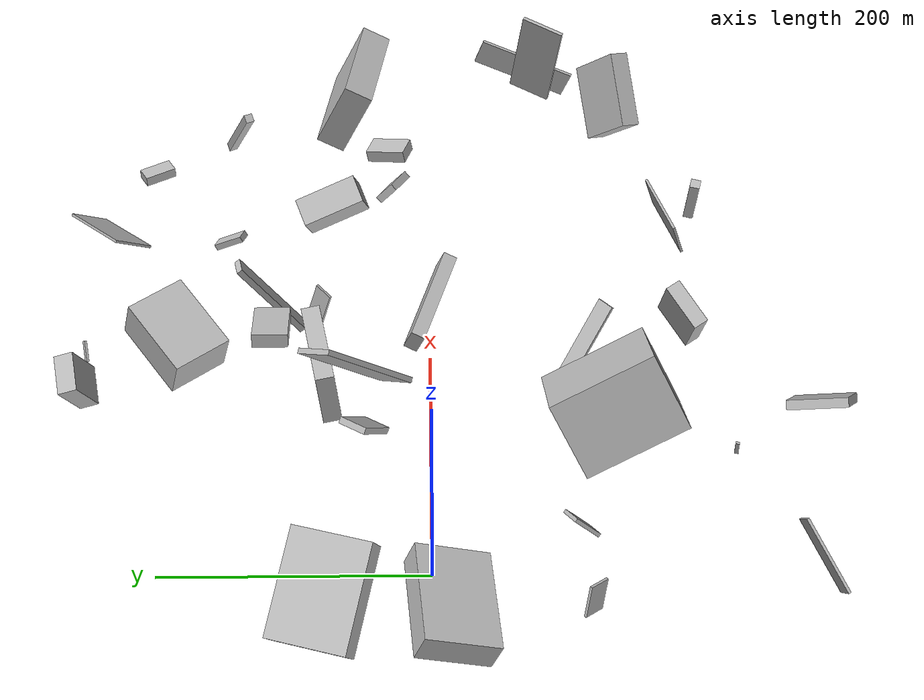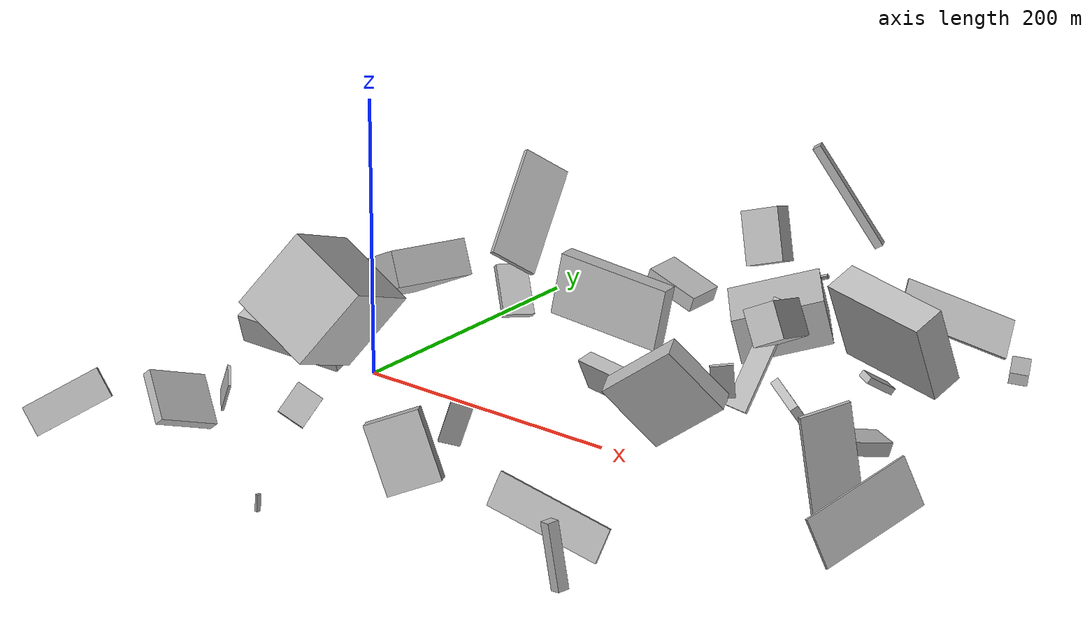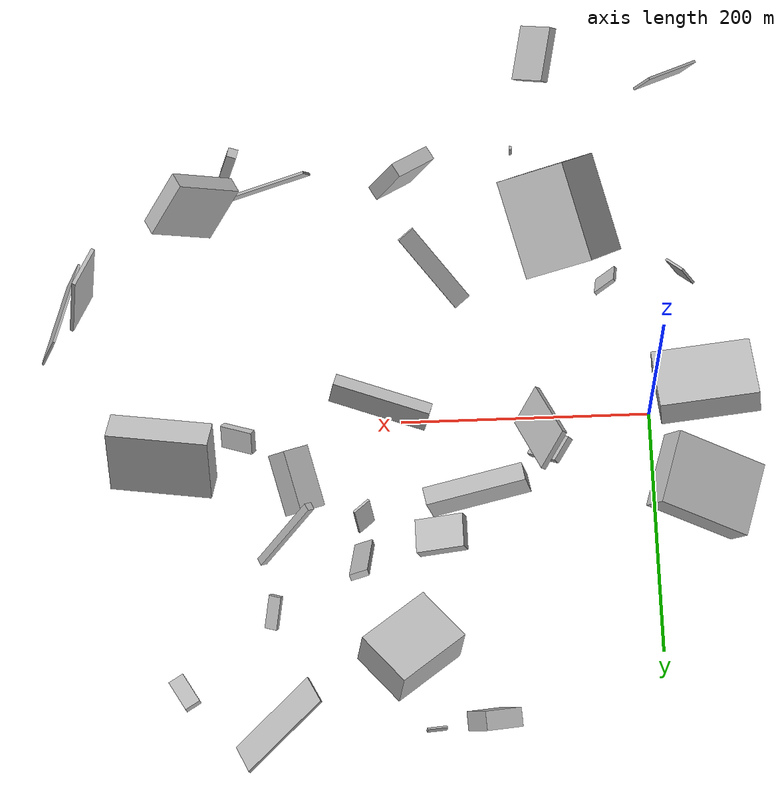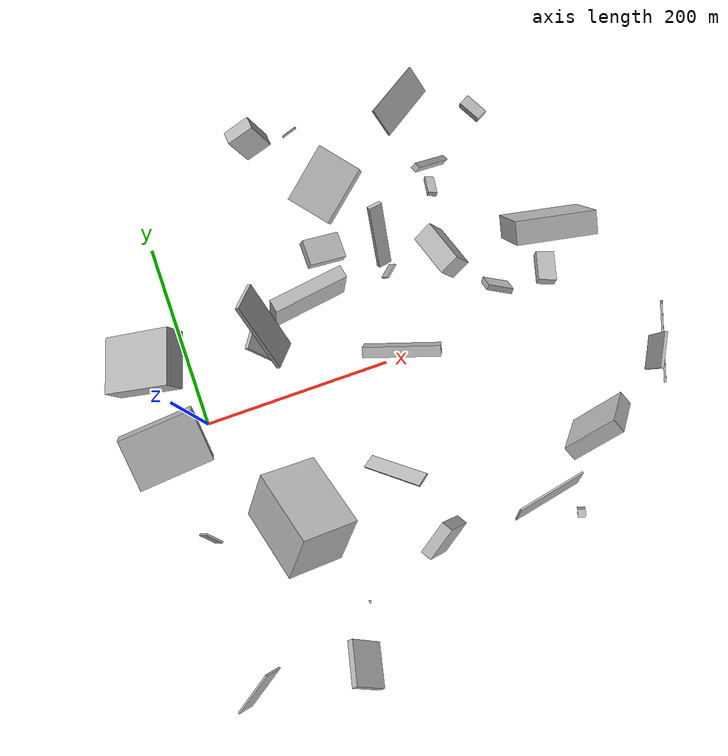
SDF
<sdf version="1.6">
 <world name="default">
  <scene>
   <sky><clouds><speed>12</speed></clouds></sky>
   <ambient>0.4 0.4 0.4 1</ambient>
   <background>0.7 0.7 0.7 1</background>
   <shadows>1</shadows>
  </scene>
  <gravity>0 0 -9.8066</gravity>
  <magnetic_field>6e-06 2.3e-05 -4.2e-05</magnetic_field>
  <physics default="0" name="default_physics" type="ode">
   <ode>
    <solver>
     <type>quick</type>
     <iters>10</iters>
     <sor>1.0</sor>
     <use_dynamic_moi_rescaling>0</use_dynamic_moi_rescaling>
    </solver>
    <constraints>
     <cfm>0</cfm>
     <erp>0.2</erp>
     <contact_max_correcting_vel>100</contact_max_correcting_vel>
     <contact_surface_layer>0.001</contact_surface_layer>
    </constraints>
   </ode>
   <max_step_size>0.004</max_step_size>
   <real_time_factor>1</real_time_factor>
   <real_time_update_rate>250</real_time_update_rate>
  </physics>
  <light name="sun" type="directional">
   <pose>0 0 10 0 0 0</pose>
   <diffuse>0.8 0.8 0.8 1</diffuse>
   <specular>0.2 0.2 0.2 1</specular>
   <attenuation>
    <range>1000</range>
    <constant>0.9</constant>
    <linear>0.01</linear>
    <quadratic>0.001</quadratic>
   </attenuation>
   <direction>-0.5 0.1 -0.9</direction>
  </light>
  <model name="building_1">
   <static>0</static>
   <pose>378.6300890481322 227.4558059542892 31.949936025704034 -3.0175721038129115 -0.05510756100647024 2.08787185058181</pose>
   <link name="link">
    <gravity>0</gravity>
    <pose>0 0 4.0 0 0 0</pose>
    <collision name="collision"><geometry><box><size>26 13 8</size></box></geometry></collision>
    <visual name="visual">
     <cast_shadows>0</cast_shadows>
     <geometry><box><size>26 13 8</size></box></geometry>
     <material>
      <script>
       <uri>model://HANNAS_wall/materials/scripts</uri>
       <uri>model://HANNAS_wall/materials/textures</uri>
       <name>vrc/HANNAS_wall</name>
      </script>
     </material>
    </visual>
   </link>
  </model>
  <model name="building_2">
   <static>0</static>
   <pose>142.54357922878933 88.36336765702166 65.46653922329924 1.1420210324128879 -1.3968869808307764 0.6118035411615986</pose>
   <link name="link">
    <gravity>0</gravity>
    <pose>0 0 7.0 0 0 0</pose>
    <collision name="collision"><geometry><box><size>44 80 14</size></box></geometry></collision>
    <visual name="visual">
     <cast_shadows>0</cast_shadows>
     <geometry><box><size>44 80 14</size></box></geometry>
     <material>
      <script>
       <uri>model://HANNAS_wall/materials/scripts</uri>
       <uri>model://HANNAS_wall/materials/textures</uri>
       <name>vrc/HANNAS_wall</name>
      </script>
     </material>
    </visual>
   </link>
  </model>
  <model name="building_3">
   <static>0</static>
   <pose>83.53625021997931 49.40393011386145 66.2792779809717 -0.13436011928778702 0.8110114692577636 -0.6721788285161574</pose>
   <link name="link">
    <gravity>0</gravity>
    <pose>0 0 2.5 0 0 0</pose>
    <collision name="collision"><geometry><box><size>37 22 5</size></box></geometry></collision>
    <visual name="visual">
     <cast_shadows>0</cast_shadows>
     <geometry><box><size>37 22 5</size></box></geometry>
     <material>
      <script>
       <uri>model://HANNAS_wall/materials/scripts</uri>
       <uri>model://HANNAS_wall/materials/textures</uri>
       <name>vrc/HANNAS_wall</name>
      </script>
     </material>
    </visual>
   </link>
  </model>
  <model name="building_4">
   <static>0</static>
   <pose>101.53551448108038 -230.18554979058302 7.978463317631109 0.02686569366949801 0.029123544963094147 1.3572509451682453</pose>
   <link name="link">
    <gravity>0</gravity>
    <pose>0 0 6.0 0 0 0</pose>
    <collision name="collision"><geometry><box><size>3 2 12</size></box></geometry></collision>
    <visual name="visual">
     <cast_shadows>0</cast_shadows>
     <geometry><box><size>3 2 12</size></box></geometry>
     <material>
      <script>
       <uri>model://HANNAS_wall/materials/scripts</uri>
       <uri>model://HANNAS_wall/materials/textures</uri>
       <name>vrc/HANNAS_wall</name>
      </script>
     </material>
    </visual>
   </link>
  </model>
  <model name="building_5">
   <static>0</static>
   <pose>385.81452388227916 32.32916697184466 39.932885428053076 0.12924165746838695 0.24859693241000383 1.2695977926667936</pose>
   <link name="link">
    <gravity>0</gravity>
    <pose>0 0 5.0 0 0 0</pose>
    <collision name="collision"><geometry><box><size>33 19 10</size></box></geometry></collision>
    <visual name="visual">
     <cast_shadows>0</cast_shadows>
     <geometry><box><size>33 19 10</size></box></geometry>
     <material>
      <script>
       <uri>model://HANNAS_wall/materials/scripts</uri>
       <uri>model://HANNAS_wall/materials/textures</uri>
       <name>vrc/HANNAS_wall</name>
      </script>
     </material>
    </visual>
   </link>
  </model>
  <model name="building_6">
   <static>0</static>
   <pose>276.46451157371064 235.39809383623765 52.31293419272109 -2.1742178642581824 -0.8220436280421917 -0.4314006921512007</pose>
   <link name="link">
    <gravity>0</gravity>
    <pose>0 0 40.0 0 0 0</pose>
    <collision name="collision"><geometry><box><size>2 32 80</size></box></geometry></collision>
    <visual name="visual">
     <cast_shadows>0</cast_shadows>
     <geometry><box><size>2 32 80</size></box></geometry>
     <material>
      <script>
       <uri>model://HANNAS_wall/materials/scripts</uri>
       <uri>model://HANNAS_wall/materials/textures</uri>
       <name>vrc/HANNAS_wall</name>
      </script>
     </material>
    </visual>
   </link>
  </model>
  <model name="building_7">
   <static>0</static>
   <pose>329.702483294325 -214.09583474691283 39.596435971866235 -0.3078564869934474 -1.387156337559628 -3.091199524099702</pose>
   <link name="link">
    <gravity>0</gravity>
    <pose>0 0 4.0 0 0 0</pose>
    <collision name="collision"><geometry><box><size>45 8 8</size></box></geometry></collision>
    <visual name="visual">
     <cast_shadows>0</cast_shadows>
     <geometry><box><size>45 8 8</size></box></geometry>
     <material>
      <script>
       <uri>model://HANNAS_wall/materials/scripts</uri>
       <uri>model://HANNAS_wall/materials/textures</uri>
       <name>vrc/HANNAS_wall</name>
      </script>
     </material>
    </visual>
   </link>
  </model>
  <model name="building_8">
   <static>0</static>
   <pose>386.82639569599075 50.558673441396465 108.48765748553967 -0.21500947870882992 -1.1501471449071055 -1.5385581651781668</pose>
   <link name="link">
    <gravity>0</gravity>
    <pose>0 0 11.5 0 0 0</pose>
    <collision name="collision"><geometry><box><size>60 80 23</size></box></geometry></collision>
    <visual name="visual">
     <cast_shadows>0</cast_shadows>
     <geometry><box><size>60 80 23</size></box></geometry>
     <material>
      <script>
       <uri>model://HANNAS_wall/materials/scripts</uri>
       <uri>model://HANNAS_wall/materials/textures</uri>
       <name>vrc/HANNAS_wall</name>
      </script>
     </material>
    </visual>
   </link>
  </model>
  <model name="building_9">
   <static>0</static>
   <pose>254.73818949515743 -12.959639380680677 53.47846929917721 -1.8179165420365035 1.2203455072811238 1.011248714218957</pose>
   <link name="link">
    <gravity>0</gravity>
    <pose>0 0 40.0 0 0 0</pose>
    <collision name="collision"><geometry><box><size>22 11 80</size></box></geometry></collision>
    <visual name="visual">
     <cast_shadows>0</cast_shadows>
     <geometry><box><size>22 11 80</size></box></geometry>
     <material>
      <script>
       <uri>model://HANNAS_wall/materials/scripts</uri>
       <uri>model://HANNAS_wall/materials/textures</uri>
       <name>vrc/HANNAS_wall</name>
      </script>
     </material>
    </visual>
   </link>
  </model>
  <model name="building_10">
   <static>0</static>
   <pose>144.82635682116552 259.7315178178161 36.94701068665416 -0.32245240597900726 -0.3122622918058334 0.17769858947750686</pose>
   <link name="link">
    <gravity>0</gravity>
    <pose>0 0 19.5 0 0 0</pose>
    <collision name="collision"><geometry><box><size>30 15 39</size></box></geometry></collision>
    <visual name="visual">
     <cast_shadows>0</cast_shadows>
     <geometry><box><size>30 15 39</size></box></geometry>
     <material>
      <script>
       <uri>model://HANNAS_wall/materials/scripts</uri>
       <uri>model://HANNAS_wall/materials/textures</uri>
       <name>vrc/HANNAS_wall</name>
      </script>
     </material>
    </visual>
   </link>
  </model>
  <model name="building_11">
   <static>0</static>
   <pose>86.8189057081853 -257.9130458008998 89.68457272135575 -1.1086277320111741 -0.7345601875267742 2.604937332853221</pose>
   <link name="link">
    <gravity>0</gravity>
    <pose>0 0 22.0 0 0 0</pose>
    <collision name="collision"><geometry><box><size>35 7 44</size></box></geometry></collision>
    <visual name="visual">
     <cast_shadows>0</cast_shadows>
     <geometry><box><size>35 7 44</size></box></geometry>
     <material>
      <script>
       <uri>model://HANNAS_wall/materials/scripts</uri>
       <uri>model://HANNAS_wall/materials/textures</uri>
       <name>vrc/HANNAS_wall</name>
      </script>
     </material>
    </visual>
   </link>
  </model>
  <model name="building_12">
   <static>0</static>
   <pose>468.6399189225397 -80.3498162878991 60.44788313393431 1.2935980709880803 -0.2786426592715788 1.3208631570566522</pose>
   <link name="link">
    <gravity>0</gravity>
    <pose>0 0 1.0 0 0 0</pose>
    <collision name="collision"><geometry><box><size>80 35 2</size></box></geometry></collision>
    <visual name="visual">
     <cast_shadows>0</cast_shadows>
     <geometry><box><size>80 35 2</size></box></geometry>
     <material>
      <script>
       <uri>model://HANNAS_wall/materials/scripts</uri>
       <uri>model://HANNAS_wall/materials/textures</uri>
       <name>vrc/HANNAS_wall</name>
      </script>
     </material>
    </visual>
   </link>
  </model>
  <model name="building_13">
   <static>0</static>
   <pose>155.13027048367218 119.6570271208386 78.99609737779255 1.8991001679875241 -0.005731201520974745 1.5782811061872324</pose>
   <link name="link">
    <gravity>0</gravity>
    <pose>0 0 19.5 0 0 0</pose>
    <collision name="collision"><geometry><box><size>27 11 39</size></box></geometry></collision>
    <visual name="visual">
     <cast_shadows>0</cast_shadows>
     <geometry><box><size>27 11 39</size></box></geometry>
     <material>
      <script>
       <uri>model://HANNAS_wall/materials/scripts</uri>
       <uri>model://HANNAS_wall/materials/textures</uri>
       <name>vrc/HANNAS_wall</name>
      </script>
     </material>
    </visual>
   </link>
  </model>
  <model name="building_14">
   <static>0</static>
   <pose>304.91521803849656 151.28482458506386 29.518021315049054 -2.1649663959014385 0.2177763498980822 -0.34125439978924466</pose>
   <link name="link">
    <gravity>0</gravity>
    <pose>0 0 13.5 0 0 0</pose>
    <collision name="collision"><geometry><box><size>10 5 27</size></box></geometry></collision>
    <visual name="visual">
     <cast_shadows>0</cast_shadows>
     <geometry><box><size>10 5 27</size></box></geometry>
     <material>
      <script>
       <uri>model://HANNAS_wall/materials/scripts</uri>
       <uri>model://HANNAS_wall/materials/textures</uri>
       <name>vrc/HANNAS_wall</name>
      </script>
     </material>
    </visual>
   </link>
  </model>
  <model name="building_15">
   <static>0</static>
   <pose>174.78822907291257 264.065881537964 30.333207728216895 0.8977651748042286 0.9471773499864955 1.178264408399796</pose>
   <link name="link">
    <gravity>0</gravity>
    <pose>0 0 8.5 0 0 0</pose>
    <collision name="collision"><geometry><box><size>3 2 17</size></box></geometry></collision>
    <visual name="visual">
     <cast_shadows>0</cast_shadows>
     <geometry><box><size>3 2 17</size></box></geometry>
     <material>
      <script>
       <uri>model://HANNAS_wall/materials/scripts</uri>
       <uri>model://HANNAS_wall/materials/textures</uri>
       <name>vrc/HANNAS_wall</name>
      </script>
     </material>
    </visual>
   </link>
  </model>
  <model name="building_16">
   <static>0</static>
   <pose>449.1914858057049 -89.30929143248308 88.03875860980656 1.5318542168523983 -0.13664091157473346 1.1138127458124925</pose>
   <link name="link">
    <gravity>0</gravity>
    <pose>0 0 1.5 0 0 0</pose>
    <collision name="collision"><geometry><box><size>35 80 3</size></box></geometry></collision>
    <visual name="visual">
     <cast_shadows>0</cast_shadows>
     <geometry><box><size>35 80 3</size></box></geometry>
     <material>
      <script>
       <uri>model://HANNAS_wall/materials/scripts</uri>
       <uri>model://HANNAS_wall/materials/textures</uri>
       <name>vrc/HANNAS_wall</name>
      </script>
     </material>
    </visual>
   </link>
  </model>
  <model name="building_17">
   <static>0</static>
   <pose>-42.51029854162658 -40.87229555000319 24.209201875372692 0.15953811909145743 1.2157177630900329 1.80747416238422</pose>
   <link name="link">
    <gravity>0</gravity>
    <pose>0 0 28.5 0 0 0</pose>
    <collision name="collision"><geometry><box><size>23 80 57</size></box></geometry></collision>
    <visual name="visual">
     <cast_shadows>0</cast_shadows>
     <geometry><box><size>23 80 57</size></box></geometry>
     <material>
      <script>
       <uri>model://HANNAS_wall/materials/scripts</uri>
       <uri>model://HANNAS_wall/materials/textures</uri>
       <name>vrc/HANNAS_wall</name>
      </script>
     </material>
    </visual>
   </link>
  </model>
  <model name="building_18">
   <static>0</static>
   <pose>215.8315804729537 178.81861801935648 29.201018061588755 1.2019216926436542 -1.3194848188258013 -2.0837081609278636</pose>
   <link name="link">
    <gravity>0</gravity>
    <pose>0 0 24.5 0 0 0</pose>
    <collision name="collision"><geometry><box><size>34 65 49</size></box></geometry></collision>
    <visual name="visual">
     <cast_shadows>0</cast_shadows>
     <geometry><box><size>34 65 49</size></box></geometry>
     <material>
      <script>
       <uri>model://HANNAS_wall/materials/scripts</uri>
       <uri>model://HANNAS_wall/materials/textures</uri>
       <name>vrc/HANNAS_wall</name>
      </script>
     </material>
    </visual>
   </link>
  </model>
  <model name="building_19">
   <static>0</static>
   <pose>178.8415641934759 -202.38077793697286 56.15026680519378 1.2188731634627954 0.19893318067926738 2.1105789311241625</pose>
   <link name="link">
    <gravity>0</gravity>
    <pose>0 0 18.5 0 0 0</pose>
    <collision name="collision"><geometry><box><size>12 48 37</size></box></geometry></collision>
    <visual name="visual">
     <cast_shadows>0</cast_shadows>
     <geometry><box><size>12 48 37</size></box></geometry>
     <material>
      <script>
       <uri>model://HANNAS_wall/materials/scripts</uri>
       <uri>model://HANNAS_wall/materials/textures</uri>
       <name>vrc/HANNAS_wall</name>
      </script>
     </material>
    </visual>
   </link>
  </model>
  <model name="building_20">
   <static>0</static>
   <pose>279.10172461635904 98.58774731448955 80.19583089253152 1.2261812928051241 -0.4092617740150057 0.40337956079284365</pose>
   <link name="link">
    <gravity>0</gravity>
    <pose>0 0 24.5 0 0 0</pose>
    <collision name="collision"><geometry><box><size>22 26 49</size></box></geometry></collision>
    <visual name="visual">
     <cast_shadows>0</cast_shadows>
     <geometry><box><size>22 26 49</size></box></geometry>
     <material>
      <script>
       <uri>model://HANNAS_wall/materials/scripts</uri>
       <uri>model://HANNAS_wall/materials/textures</uri>
       <name>vrc/HANNAS_wall</name>
      </script>
     </material>
    </visual>
   </link>
  </model>
  <model name="building_21">
   <static>0</static>
   <pose>229.04788173076594 124.39848359369545 36.72803222783951 1.833315157120666 0.5611123049823524 1.9241326841701503</pose>
   <link name="link">
    <gravity>0</gravity>
    <pose>0 0 7.5 0 0 0</pose>
    <collision name="collision"><geometry><box><size>5 80 15</size></box></geometry></collision>
    <visual name="visual">
     <cast_shadows>0</cast_shadows>
     <geometry><box><size>5 80 15</size></box></geometry>
     <material>
      <script>
       <uri>model://HANNAS_wall/materials/scripts</uri>
       <uri>model://HANNAS_wall/materials/textures</uri>
       <name>vrc/HANNAS_wall</name>
      </script>
     </material>
    </visual>
   </link>
  </model>
  <model name="building_22">
   <static>0</static>
   <pose>83.77642204766907 -115.19687738765393 136.34528066839775 2.5446226868120063 -0.3837247619498251 -1.2842138758709696</pose>
   <link name="link">
    <gravity>0</gravity>
    <pose>0 0 30.0 0 0 0</pose>
    <collision name="collision"><geometry><box><size>80 59 60</size></box></geometry></collision>
    <visual name="visual">
     <cast_shadows>0</cast_shadows>
     <geometry><box><size>80 59 60</size></box></geometry>
     <material>
      <script>
       <uri>model://HANNAS_wall/materials/scripts</uri>
       <uri>model://HANNAS_wall/materials/textures</uri>
       <name>vrc/HANNAS_wall</name>
      </script>
     </material>
    </visual>
   </link>
  </model>
  <model name="building_23">
   <static>0</static>
   <pose>-46.95913681818516 47.614660180260195 43.34200199447927 -1.6956577413341796 1.0885044705036162 -0.4076006538381304</pose>
   <link name="link">
    <gravity>0</gravity>
    <pose>0 0 30.0 0 0 0</pose>
    <collision name="collision"><geometry><box><size>26 80 60</size></box></geometry></collision>
    <visual name="visual">
     <cast_shadows>0</cast_shadows>
     <geometry><box><size>26 80 60</size></box></geometry>
     <material>
      <script>
       <uri>model://HANNAS_wall/materials/scripts</uri>
       <uri>model://HANNAS_wall/materials/textures</uri>
       <name>vrc/HANNAS_wall</name>
      </script>
     </material>
    </visual>
   </link>
  </model>
  <model name="building_24">
   <static>0</static>
   <pose>29.28860568119156 -108.091351126948 20.50913659219942 -0.7855183129588947 0.7318077711695415 -1.723633074717996</pose>
   <link name="link">
    <gravity>0</gravity>
    <pose>0 0 1.5 0 0 0</pose>
    <collision name="collision"><geometry><box><size>24 20 3</size></box></geometry></collision>
    <visual name="visual">
     <cast_shadows>0</cast_shadows>
     <geometry><box><size>24 20 3</size></box></geometry>
     <material>
      <script>
       <uri>model://HANNAS_wall/materials/scripts</uri>
       <uri>model://HANNAS_wall/materials/textures</uri>
       <name>vrc/HANNAS_wall</name>
      </script>
     </material>
    </visual>
   </link>
  </model>
  <model name="building_25">
   <static>0</static>
   <pose>-24.774171480342662 -271.7706886713612 63.39663441698344 1.9948707306293325 -0.9682970451728089 -3.048433675018288</pose>
   <link name="link">
    <gravity>0</gravity>
    <pose>0 0 1.0 0 0 0</pose>
    <collision name="collision"><geometry><box><size>21 58 2</size></box></geometry></collision>
    <visual name="visual">
     <cast_shadows>0</cast_shadows>
     <geometry><box><size>21 58 2</size></box></geometry>
     <material>
      <script>
       <uri>model://HANNAS_wall/materials/scripts</uri>
       <uri>model://HANNAS_wall/materials/textures</uri>
       <name>vrc/HANNAS_wall</name>
      </script>
     </material>
    </visual>
   </link>
  </model>
  <model name="building_26">
   <static>0</static>
   <pose>357.5813405006888 -134.48968826567432 133.00665342259938 2.006702231827166 0.8439863426916073 0.7551265227783432</pose>
   <link name="link">
    <gravity>0</gravity>
    <pose>0 0 7.5 0 0 0</pose>
    <collision name="collision"><geometry><box><size>51 57 15</size></box></geometry></collision>
    <visual name="visual">
     <cast_shadows>0</cast_shadows>
     <geometry><box><size>51 57 15</size></box></geometry>
     <material>
      <script>
       <uri>model://HANNAS_wall/materials/scripts</uri>
       <uri>model://HANNAS_wall/materials/textures</uri>
       <name>vrc/HANNAS_wall</name>
      </script>
     </material>
    </visual>
   </link>
  </model>
  <model name="building_27">
   <static>0</static>
   <pose>93.01200428295454 53.43921074447227 124.85596742027884 0.8447793353870793 -0.7325851554637861 1.8543355810245035</pose>
   <link name="link">
    <gravity>0</gravity>
    <pose>0 0 2.0 0 0 0</pose>
    <collision name="collision"><geometry><box><size>79 34 4</size></box></geometry></collision>
    <visual name="visual">
     <cast_shadows>0</cast_shadows>
     <geometry><box><size>79 34 4</size></box></geometry>
     <material>
      <script>
       <uri>model://HANNAS_wall/materials/scripts</uri>
       <uri>model://HANNAS_wall/materials/textures</uri>
       <name>vrc/HANNAS_wall</name>
      </script>
     </material>
    </visual>
   </link>
  </model>
  <model name="building_28">
   <static>0</static>
   <pose>232.764597658029 88.05654326898701 28.19723239105333 -1.86669835625714 0.08696734102066277 -2.4272550580579453</pose>
   <link name="link">
    <gravity>0</gravity>
    <pose>0 0 1.0 0 0 0</pose>
    <collision name="collision"><geometry><box><size>16 29 2</size></box></geometry></collision>
    <visual name="visual">
     <cast_shadows>0</cast_shadows>
     <geometry><box><size>16 29 2</size></box></geometry>
     <material>
      <script>
       <uri>model://HANNAS_wall/materials/scripts</uri>
       <uri>model://HANNAS_wall/materials/textures</uri>
       <name>vrc/HANNAS_wall</name>
      </script>
     </material>
    </visual>
   </link>
  </model>
  <model name="building_29">
   <static>0</static>
   <pose>342.6642940671754 24.16623978367732 54.45842962923268 1.141603493454709 0.5796486273318296 -2.2327871780009954</pose>
   <link name="link">
    <gravity>0</gravity>
    <pose>0 0 14.0 0 0 0</pose>
    <collision name="collision"><geometry><box><size>6 19 28</size></box></geometry></collision>
    <visual name="visual">
     <cast_shadows>0</cast_shadows>
     <geometry><box><size>6 19 28</size></box></geometry>
     <material>
      <script>
       <uri>model://HANNAS_wall/materials/scripts</uri>
       <uri>model://HANNAS_wall/materials/textures</uri>
       <name>vrc/HANNAS_wall</name>
      </script>
     </material>
    </visual>
   </link>
  </model>
  <model name="building_30">
   <static>0</static>
   <pose>175.55694690763875 -109.5182985265741 47.33099819058658 -1.2528340646874552 -0.7789118052816626 1.9919184249975581</pose>
   <link name="link">
    <gravity>0</gravity>
    <pose>0 0 7.5 0 0 0</pose>
    <collision name="collision"><geometry><box><size>2 80 15</size></box></geometry></collision>
    <visual name="visual">
     <cast_shadows>0</cast_shadows>
     <geometry><box><size>2 80 15</size></box></geometry>
     <material>
      <script>
       <uri>model://HANNAS_wall/materials/scripts</uri>
       <uri>model://HANNAS_wall/materials/textures</uri>
       <name>vrc/HANNAS_wall</name>
      </script>
     </material>
    </visual>
   </link>
  </model>
  <model name="building_31">
   <static>0</static>
   <pose>312.5362811146913 153.1231380718456 125.18257450749877 0.5689149796964527 0.036505183033920356 -1.1375161159561422</pose>
   <link name="link">
    <gravity>0</gravity>
    <pose>0 0 40.0 0 0 0</pose>
    <collision name="collision"><geometry><box><size>6 6 80</size></box></geometry></collision>
    <visual name="visual">
     <cast_shadows>0</cast_shadows>
     <geometry><box><size>6 6 80</size></box></geometry>
     <material>
      <script>
       <uri>model://HANNAS_wall/materials/scripts</uri>
       <uri>model://HANNAS_wall/materials/textures</uri>
       <name>vrc/HANNAS_wall</name>
      </script>
     </material>
    </visual>
   </link>
  </model>
  <model name="building_32">
   <static>0</static>
   <pose>-37.05759877582202 -109.27573695646657 23.20712874458746 1.9902107846655286 0.19663436486228233 0.8471166389058867</pose>
   <link name="link">
    <gravity>0</gravity>
    <pose>0 0 9.5 0 0 0</pose>
    <collision name="collision"><geometry><box><size>2 25 19</size></box></geometry></collision>
    <visual name="visual">
     <cast_shadows>0</cast_shadows>
     <geometry><box><size>2 25 19</size></box></geometry>
     <material>
      <script>
       <uri>model://HANNAS_wall/materials/scripts</uri>
       <uri>model://HANNAS_wall/materials/textures</uri>
       <name>vrc/HANNAS_wall</name>
      </script>
     </material>
    </visual>
   </link>
  </model>
  <model name="building_33">
   <static>0</static>
   <pose>307.2326132435917 -188.03214540277187 48.8028643284398 0.8184485551933564 -1.1658988009475801 0.9789385745526509</pose>
   <link name="link">
    <gravity>0</gravity>
    <pose>0 0 1.0 0 0 0</pose>
    <collision name="collision"><geometry><box><size>24 80 2</size></box></geometry></collision>
    <visual name="visual">
     <cast_shadows>0</cast_shadows>
     <geometry><box><size>24 80 2</size></box></geometry>
     <material>
      <script>
       <uri>model://HANNAS_wall/materials/scripts</uri>
       <uri>model://HANNAS_wall/materials/textures</uri>
       <name>vrc/HANNAS_wall</name>
      </script>
     </material>
    </visual>
   </link>
  </model>
 </world>
</sdf>
